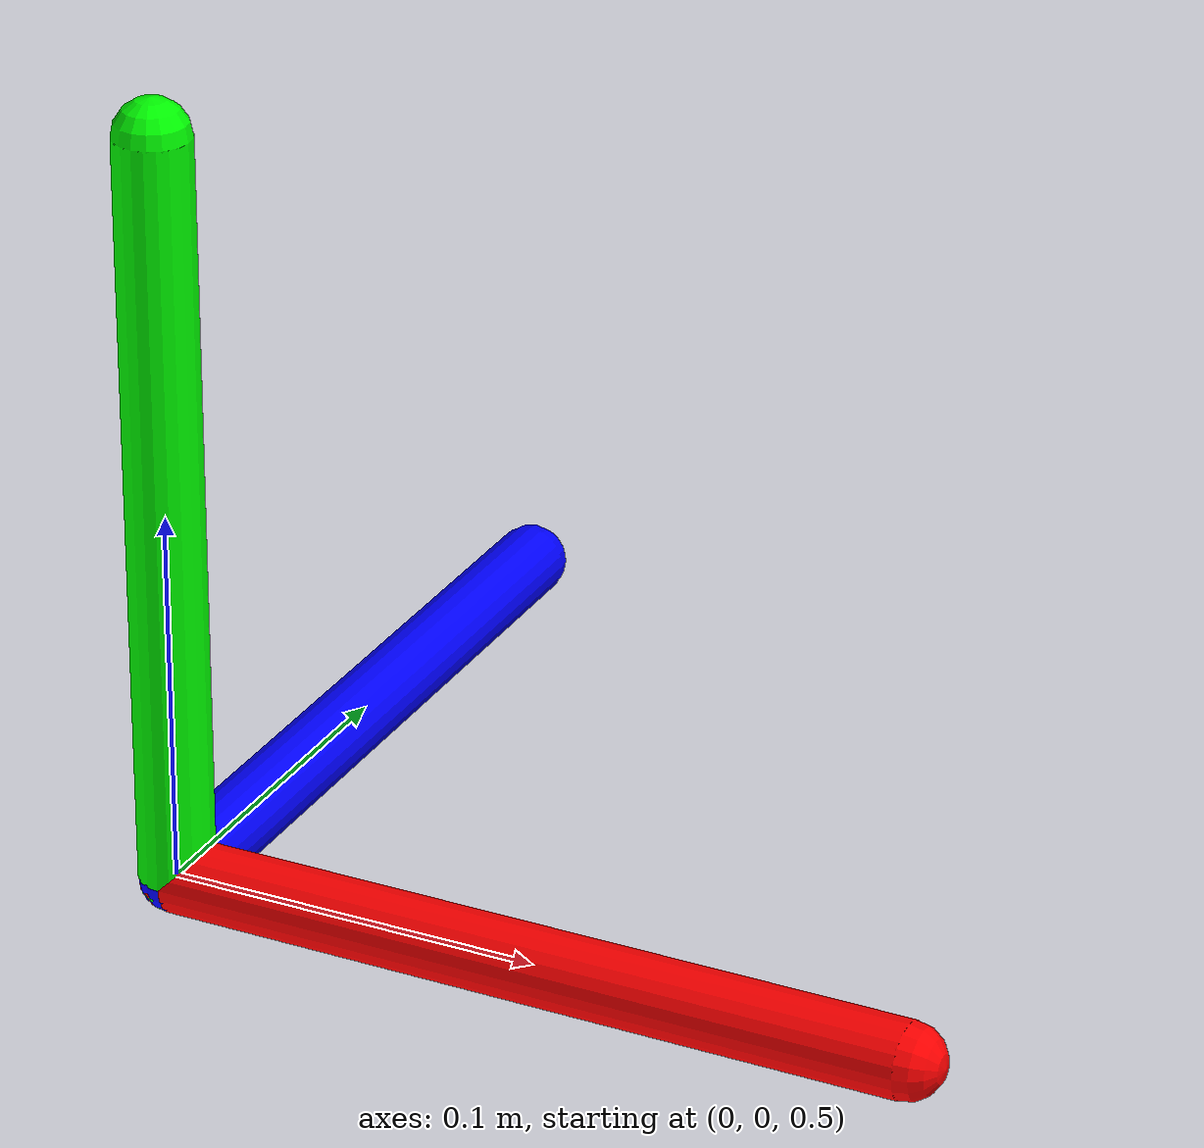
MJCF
<mujoco model="largebox">

    <compiler meshdir="./"/>

    <default>
        <geom friction="0.9 0.5 0.5"
              rgba="0.7 0.8 0.9 0.7"/>
        <joint damping="0.5"/>
    </default>

    <asset>
        <mesh name="largebox_mesh"
              file="largebox.obj"
              scale="1 1 1"/>
    </asset>

    <worldbody>

        <body name="largebox_link"
              pos="0 0 0.5">

            <!-- 自由物体 -->
            <freejoint/>

            <inertial pos="0 0 0"
                      mass="0.1"
                      diaginertia="0.002 0.002 0.002"/>

            <!-- 物块 -->
            <geom type="mesh"
                  mesh="largebox_mesh"
                  pos="0 0 0"
                  quat="1 0 0 0"
                  rgba="0.7 0.8 0.9 0.0"
                  friction="0.9 0.5 0.5"
                  solref="0.02 1"
                  solimp="0.9 0.95 0.001"/>

            <!-- X轴 红色 -->
            <geom type="capsule"
                  fromto="0 0 0   0.2 0 0"
                  size="0.01"
                  rgba="1 0 0 1"
                  contype="0"
                  conaffinity="0"/>

            <!-- Y轴 蓝色 -->
            <geom type="capsule"
                  fromto="0 0 0   0 0.2 0"
                  size="0.01"
                  rgba="0 0 1 1"
                  contype="0"
                  conaffinity="0"/>

            <!-- Z轴 绿色 -->
            <geom type="capsule"
                  fromto="0 0 0   0 0 0.2"
                  size="0.01"
                  rgba="0 1 0 1"
                  contype="0"
                  conaffinity="0"/>

        </body>

    </worldbody>

</mujoco>
